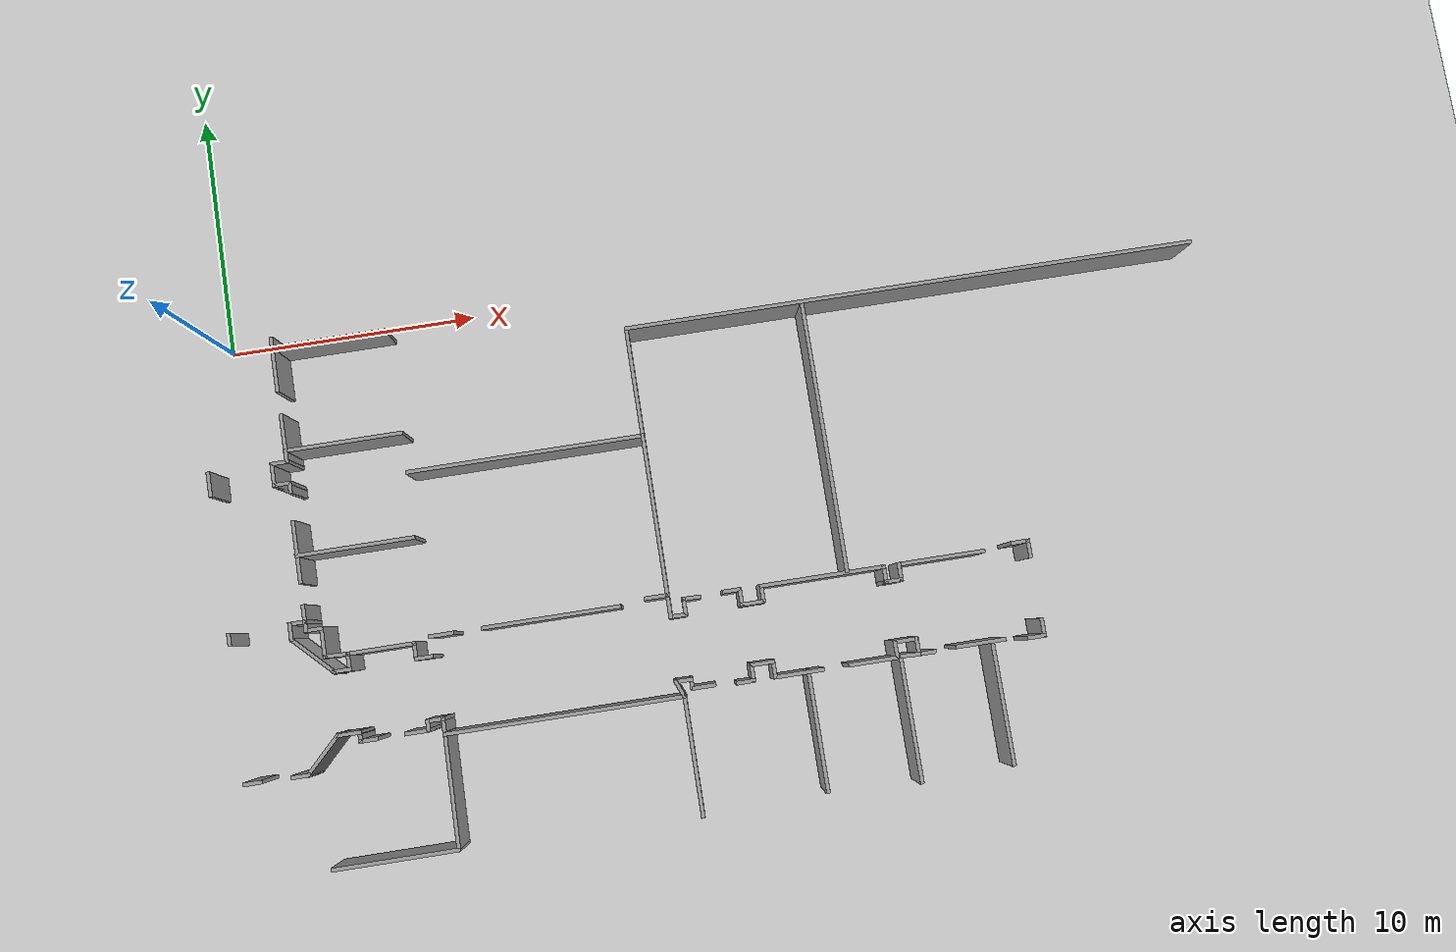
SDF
<sdf version="1.6">
 <world name="default">
  <model name="ground_plane">
   <static>1</static>
   <link name="link">
    <collision name="collision">
     <geometry><plane><normal>0 0 1</normal><size>200 100</size></plane></geometry>
     <surface><friction><ode><mu>100</mu><mu2>50</mu2></ode></friction></surface>
    </collision>
    <visual name="visual">
     <cast_shadows>0</cast_shadows>
     <geometry><plane><normal>0 0 1</normal><size>200 100</size></plane></geometry>
     <material>
      <script><uri>file://media/materials/scripts/gazebo.material</uri><name>Gazebo/Grey</name></script>
     </material>
    </visual>
   </link>
  </model>
  <model name="LuterFloorPlan">
   <pose>-8.27259 7.62647 0 0 -0 0</pose>
   <link name="Wall_762">
    <collision name="Wall_762_Collision">
     <geometry><box><size>2.25 0.15 2.5</size></box></geometry>
     <pose>0 0 1.25 0 -0 0</pose>
    </collision>
    <visual name="Wall_762_Visual">
     <pose>0 0 1.25 0 -0 0</pose>
     <geometry><box><size>2.25 0.15 2.5</size></box></geometry>
     <material>
      <script><uri>file://media/materials/scripts/gazebo.material</uri><name>Gazebo/Grey</name></script>
      <ambient>1 1 1 1</ambient>
     </material>
    </visual>
    <pose>10.4346 -8.83656 0 0 0 -1.5708</pose>
   </link>
   <link name="Wall_764">
    <collision name="Wall_764_Collision">
     <geometry><box><size>4.5 0.15 2.5</size></box></geometry>
     <pose>0 0 1.25 0 -0 0</pose>
    </collision>
    <visual name="Wall_764_Visual">
     <pose>0 0 1.25 0 -0 0</pose>
     <geometry><box><size>4.5 0.15 2.5</size></box></geometry>
     <material>
      <script><uri>file://media/materials/scripts/gazebo.material</uri><name>Gazebo/Grey</name></script>
      <ambient>1 1 1 1</ambient>
     </material>
    </visual>
    <pose>12.7194 -8.15585 0 0 -0 0</pose>
   </link>
   <link name="Wall_771">
    <collision name="Wall_771_Collision">
     <geometry><box><size>2 0.15 2.5</size></box></geometry>
     <pose>0 0 1.25 0 -0 0</pose>
    </collision>
    <visual name="Wall_771_Visual">
     <pose>0 0 1.25 0 -0 0</pose>
     <geometry><box><size>2 0.15 2.5</size></box></geometry>
     <material>
      <script><uri>file://media/materials/scripts/gazebo.material</uri><name>Gazebo/Grey</name></script>
      <ambient>1 1 1 1</ambient>
     </material>
    </visual>
    <pose>10.4461 -11.8458 0 0 0 -1.5708</pose>
   </link>
   <link name="Wall_772">
    <collision name="Wall_772_Collision">
     <geometry><box><size>0.75 0.15 2.5</size></box></geometry>
     <pose>0 0 1.25 0 -0 0</pose>
    </collision>
    <visual name="Wall_772_Visual">
     <pose>0 0 1.25 0 -0 0</pose>
     <geometry><box><size>0.75 0.15 2.5</size></box></geometry>
     <material>
      <script><uri>file://media/materials/scripts/gazebo.material</uri><name>Gazebo/Grey</name></script>
      <ambient>1 1 1 1</ambient>
     </material>
    </visual>
    <pose>10.1461 -12.7708 0 0 -0 3.14159</pose>
   </link>
   <link name="Wall_773">
    <collision name="Wall_773_Collision">
     <geometry><box><size>1 0.15 2.5</size></box></geometry>
     <pose>0 0 1.25 0 -0 0</pose>
    </collision>
    <visual name="Wall_773_Visual">
     <pose>0 0 1.25 0 -0 0</pose>
     <geometry><box><size>1 0.15 2.5</size></box></geometry>
     <material>
      <script><uri>file://media/materials/scripts/gazebo.material</uri><name>Gazebo/Grey</name></script>
      <ambient>1 1 1 1</ambient>
     </material>
    </visual>
    <pose>9.84605 -13.1958 0 0 0 -1.5708</pose>
   </link>
   <link name="Wall_774">
    <collision name="Wall_774_Collision">
     <geometry><box><size>0.75 0.15 2.5</size></box></geometry>
     <pose>0 0 1.25 0 -0 0</pose>
    </collision>
    <visual name="Wall_774_Visual">
     <pose>0 0 1.25 0 -0 0</pose>
     <geometry><box><size>0.75 0.15 2.5</size></box></geometry>
     <material>
      <script><uri>file://media/materials/scripts/gazebo.material</uri><name>Gazebo/Grey</name></script>
      <ambient>1 1 1 1</ambient>
     </material>
    </visual>
    <pose>10.1461 -13.6208 0 0 -0 0</pose>
   </link>
   <link name="Wall_775">
    <collision name="Wall_775_Collision">
     <geometry><box><size>0.5 0.15 2.5</size></box></geometry>
     <pose>0 0 1.25 0 -0 0</pose>
    </collision>
    <visual name="Wall_775_Visual">
     <pose>0 0 1.25 0 -0 0</pose>
     <geometry><box><size>0.5 0.15 2.5</size></box></geometry>
     <material>
      <script><uri>file://media/materials/scripts/gazebo.material</uri><name>Gazebo/Grey</name></script>
      <ambient>1 1 1 1</ambient>
     </material>
    </visual>
    <pose>10.4461 -13.7958 0 0 0 -1.5708</pose>
   </link>
   <link name="Wall_777">
    <collision name="Wall_777_Collision">
     <geometry><box><size>4.75 0.15 2.5</size></box></geometry>
     <pose>0 0 1.25 0 -0 0</pose>
    </collision>
    <visual name="Wall_777_Visual">
     <pose>0 0 1.25 0 -0 0</pose>
     <geometry><box><size>4.75 0.15 2.5</size></box></geometry>
     <material>
      <script><uri>file://media/materials/scripts/gazebo.material</uri><name>Gazebo/Grey</name></script>
      <ambient>1 1 1 1</ambient>
     </material>
    </visual>
    <pose>12.7262 -12.3328 0 0 -0 0</pose>
   </link>
   <link name="Wall_791">
    <collision name="Wall_791_Collision">
     <geometry><box><size>1 0.15 2.5</size></box></geometry>
     <pose>0 0 1.25 0 -0 0</pose>
    </collision>
    <visual name="Wall_791_Visual">
     <pose>0 0 1.25 0 -0 0</pose>
     <geometry><box><size>1 0.15 2.5</size></box></geometry>
     <material>
      <script><uri>file://media/materials/scripts/gazebo.material</uri><name>Gazebo/Grey</name></script>
      <ambient>1 1 1 1</ambient>
     </material>
    </visual>
    <pose>7.32264 -13.1916 0 0 -0 1.5708</pose>
   </link>
   <link name="Wall_809">
    <collision name="Wall_809_Collision">
     <geometry><box><size>0.5 0.15 2.5</size></box></geometry>
     <pose>0 0 1.25 0 -0 0</pose>
    </collision>
    <visual name="Wall_809_Visual">
     <pose>0 0 1.25 0 -0 0</pose>
     <geometry><box><size>0.5 0.15 2.5</size></box></geometry>
     <material>
      <script><uri>file://media/materials/scripts/gazebo.material</uri><name>Gazebo/Grey</name></script>
      <ambient>1 1 1 1</ambient>
     </material>
    </visual>
    <pose>7.3678 -19.3346 0 0 -0 1.5708</pose>
   </link>
   <link name="Wall_819">
    <collision name="Wall_819_Collision">
     <geometry><box><size>2.5 0.15 2.5</size></box></geometry>
     <pose>0 0 1.25 0 -0 0</pose>
    </collision>
    <visual name="Wall_819_Visual">
     <pose>0 0 1.25 0 -0 0</pose>
     <geometry><box><size>2.5 0.15 2.5</size></box></geometry>
     <material>
      <script><uri>file://media/materials/scripts/gazebo.material</uri><name>Gazebo/Grey</name></script>
      <ambient>1 1 1 1</ambient>
     </material>
    </visual>
    <pose>10.387 -16.3617 0 0 0 -1.5708</pose>
   </link>
   <link name="Wall_821">
    <collision name="Wall_821_Collision">
     <geometry><box><size>4.75 0.15 2.5</size></box></geometry>
     <pose>0 0 1.25 0 -0 0</pose>
    </collision>
    <visual name="Wall_821_Visual">
     <pose>0 0 1.25 0 -0 0</pose>
     <geometry><box><size>4.75 0.15 2.5</size></box></geometry>
     <material>
      <script><uri>file://media/materials/scripts/gazebo.material</uri><name>Gazebo/Grey</name></script>
      <ambient>1 1 1 1</ambient>
     </material>
    </visual>
    <pose>12.6607 -16.5017 0 0 -0 0</pose>
   </link>
   <link name="Wall_823">
    <collision name="Wall_823_Collision">
     <geometry><box><size>0.75 0.15 2.5</size></box></geometry>
     <pose>0 0 1.25 0 -0 0</pose>
    </collision>
    <visual name="Wall_823_Visual">
     <pose>0 0 1.25 0 -0 0</pose>
     <geometry><box><size>0.75 0.15 2.5</size></box></geometry>
     <material>
      <script><uri>file://media/materials/scripts/gazebo.material</uri><name>Gazebo/Grey</name></script>
      <ambient>1 1 1 1</ambient>
     </material>
    </visual>
    <pose>10.3617 -18.7996 0 0 0 -1.5708</pose>
   </link>
   <link name="Wall_824">
    <collision name="Wall_824_Collision">
     <geometry><box><size>0.75 0.15 2.5</size></box></geometry>
     <pose>0 0 1.25 0 -0 0</pose>
    </collision>
    <visual name="Wall_824_Visual">
     <pose>0 0 1.25 0 -0 0</pose>
     <geometry><box><size>0.75 0.15 2.5</size></box></geometry>
     <material>
      <script><uri>file://media/materials/scripts/gazebo.material</uri><name>Gazebo/Grey</name></script>
      <ambient>1 1 1 1</ambient>
     </material>
    </visual>
    <pose>10.0617 -19.0996 0 0 -0 3.14159</pose>
   </link>
   <link name="Wall_825">
    <collision name="Wall_825_Collision">
     <geometry><box><size>0.75 0.15 2.5</size></box></geometry>
     <pose>0 0 1.25 0 -0 0</pose>
    </collision>
    <visual name="Wall_825_Visual">
     <pose>0 0 1.25 0 -0 0</pose>
     <geometry><box><size>0.75 0.15 2.5</size></box></geometry>
     <material>
      <script><uri>file://media/materials/scripts/gazebo.material</uri><name>Gazebo/Grey</name></script>
      <ambient>1 1 1 1</ambient>
     </material>
    </visual>
    <pose>9.76166 -19.3996 0 0 0 -1.5708</pose>
   </link>
   <link name="Wall_826">
    <collision name="Wall_826_Collision">
     <geometry><box><size>2.25 0.15 2.5</size></box></geometry>
     <pose>0 0 1.25 0 -0 0</pose>
    </collision>
    <visual name="Wall_826_Visual">
     <pose>0 0 1.25 0 -0 0</pose>
     <geometry><box><size>2.25 0.15 2.5</size></box></geometry>
     <material>
      <script><uri>file://media/materials/scripts/gazebo.material</uri><name>Gazebo/Grey</name></script>
      <ambient>1 1 1 1</ambient>
     </material>
    </visual>
    <pose>10.5041 -20.4421 0 0 0 -0.785398</pose>
   </link>
   <link name="Wall_827">
    <collision name="Wall_827_Collision">
     <geometry><box><size>0.75 0.15 2.5</size></box></geometry>
     <pose>0 0 1.25 0 -0 0</pose>
    </collision>
    <visual name="Wall_827_Visual">
     <pose>0 0 1.25 0 -0 0</pose>
     <geometry><box><size>0.75 0.15 2.5</size></box></geometry>
     <material>
      <script><uri>file://media/materials/scripts/gazebo.material</uri><name>Gazebo/Grey</name></script>
      <ambient>1 1 1 1</ambient>
     </material>
    </visual>
    <pose>11.5466 -21.1846 0 0 -0 0</pose>
   </link>
   <link name="Wall_828">
    <collision name="Wall_828_Collision">
     <geometry><box><size>0.75 0.15 2.5</size></box></geometry>
     <pose>0 0 1.25 0 -0 0</pose>
    </collision>
    <visual name="Wall_828_Visual">
     <pose>0 0 1.25 0 -0 0</pose>
     <geometry><box><size>0.75 0.15 2.5</size></box></geometry>
     <material>
      <script><uri>file://media/materials/scripts/gazebo.material</uri><name>Gazebo/Grey</name></script>
      <ambient>1 1 1 1</ambient>
     </material>
    </visual>
    <pose>11.8466 -20.8846 0 0 -0 1.5708</pose>
   </link>
   <link name="Wall_829">
    <collision name="Wall_829_Collision">
     <geometry><box><size>2.75 0.15 2.5</size></box></geometry>
     <pose>0 0 1.25 0 -0 0</pose>
    </collision>
    <visual name="Wall_829_Visual">
     <pose>0 0 1.25 0 -0 0</pose>
     <geometry><box><size>2.75 0.15 2.5</size></box></geometry>
     <material>
      <script><uri>file://media/materials/scripts/gazebo.material</uri><name>Gazebo/Grey</name></script>
      <ambient>1 1 1 1</ambient>
     </material>
    </visual>
    <pose>13.1466 -20.5846 0 0 -0 0</pose>
   </link>
   <link name="Wall_830">
    <collision name="Wall_830_Collision">
     <geometry><box><size>0.75 0.15 2.5</size></box></geometry>
     <pose>0 0 1.25 0 -0 0</pose>
    </collision>
    <visual name="Wall_830_Visual">
     <pose>0 0 1.25 0 -0 0</pose>
     <geometry><box><size>0.75 0.15 2.5</size></box></geometry>
     <material>
      <script><uri>file://media/materials/scripts/gazebo.material</uri><name>Gazebo/Grey</name></script>
      <ambient>1 1 1 1</ambient>
     </material>
    </visual>
    <pose>14.4466 -20.8846 0 0 0 -1.5708</pose>
   </link>
   <link name="Wall_831">
    <collision name="Wall_831_Collision">
     <geometry><box><size>0.75 0.15 2.5</size></box></geometry>
     <pose>0 0 1.25 0 -0 0</pose>
    </collision>
    <visual name="Wall_831_Visual">
     <pose>0 0 1.25 0 -0 0</pose>
     <geometry><box><size>0.75 0.15 2.5</size></box></geometry>
     <material>
      <script><uri>file://media/materials/scripts/gazebo.material</uri><name>Gazebo/Grey</name></script>
      <ambient>1 1 1 1</ambient>
     </material>
    </visual>
    <pose>14.7466 -21.1846 0 0 -0 0</pose>
   </link>
   <link name="Wall_833">
    <collision name="Wall_833_Collision">
     <geometry><box><size>0.5 0.15 2.5</size></box></geometry>
     <pose>0 0 1.25 0 -0 0</pose>
    </collision>
    <visual name="Wall_833_Visual">
     <pose>0 0 1.25 0 -0 0</pose>
     <geometry><box><size>0.5 0.15 2.5</size></box></geometry>
     <material>
      <script><uri>file://media/materials/scripts/gazebo.material</uri><name>Gazebo/Grey</name></script>
      <ambient>1 1 1 1</ambient>
     </material>
    </visual>
    <pose>10.3617 -19.2746 0 0 0 -1.5708</pose>
   </link>
   <link name="Wall_834">
    <collision name="Wall_834_Collision">
     <geometry><box><size>0.75 0.15 2.5</size></box></geometry>
     <pose>0 0 1.25 0 -0 0</pose>
    </collision>
    <visual name="Wall_834_Visual">
     <pose>0 0 1.25 0 -0 0</pose>
     <geometry><box><size>0.75 0.15 2.5</size></box></geometry>
     <material>
      <script><uri>file://media/materials/scripts/gazebo.material</uri><name>Gazebo/Grey</name></script>
      <ambient>1 1 1 1</ambient>
     </material>
    </visual>
    <pose>10.6617 -19.4496 0 0 -0 0</pose>
   </link>
   <link name="Wall_835">
    <collision name="Wall_835_Collision">
     <geometry><box><size>1.25 0.15 2.5</size></box></geometry>
     <pose>0 0 1.25 0 -0 0</pose>
    </collision>
    <visual name="Wall_835_Visual">
     <pose>0 0 1.25 0 -0 0</pose>
     <geometry><box><size>1.25 0.15 2.5</size></box></geometry>
     <material>
      <script><uri>file://media/materials/scripts/gazebo.material</uri><name>Gazebo/Grey</name></script>
      <ambient>1 1 1 1</ambient>
     </material>
    </visual>
    <pose>10.9617 -19.9996 0 0 0 -1.5708</pose>
   </link>
   <link name="Wall_836">
    <collision name="Wall_836_Collision">
     <geometry><box><size>1.03561 0.15 2.5</size></box></geometry>
     <pose>0 0 1.25 0 -0 0</pose>
    </collision>
    <visual name="Wall_836_Visual">
     <pose>0 0 1.25 0 -0 0</pose>
     <geometry><box><size>1.03561 0.15 2.5</size></box></geometry>
     <material>
      <script><uri>file://media/materials/scripts/gazebo.material</uri><name>Gazebo/Grey</name></script>
      <ambient>1 1 1 1</ambient>
     </material>
    </visual>
    <pose>11.4041 -20.5671 0 0 0 -0.039445</pose>
   </link>
   <link name="Wall_852">
    <collision name="Wall_852_Collision">
     <geometry><box><size>0.75 0.15 2.5</size></box></geometry>
     <pose>0 0 1.25 0 -0 0</pose>
    </collision>
    <visual name="Wall_852_Visual">
     <pose>0 0 1.25 0 -0 0</pose>
     <geometry><box><size>0.75 0.15 2.5</size></box></geometry>
     <material>
      <script><uri>file://media/materials/scripts/gazebo.material</uri><name>Gazebo/Grey</name></script>
      <ambient>1 1 1 1</ambient>
     </material>
    </visual>
    <pose>7.59685 -24.914 0 0 -0 0</pose>
   </link>
   <link name="Wall_858">
    <collision name="Wall_858_Collision">
     <geometry><box><size>5 0.15 2.5</size></box></geometry>
     <pose>0 0 1.25 0 -0 0</pose>
    </collision>
    <visual name="Wall_858_Visual">
     <pose>0 0 1.25 0 -0 0</pose>
     <geometry><box><size>5 0.15 2.5</size></box></geometry>
     <material>
      <script><uri>file://media/materials/scripts/gazebo.material</uri><name>Gazebo/Grey</name></script>
      <ambient>1 1 1 1</ambient>
     </material>
    </visual>
    <pose>12.6662 -28.6096 0 0 -0 0</pose>
   </link>
   <link name="Wall_859">
    <collision name="Wall_859_Collision">
     <geometry><box><size>4.56757 0.15 2.5</size></box></geometry>
     <pose>0 0 1.25 0 -0 0</pose>
    </collision>
    <visual name="Wall_859_Visual">
     <pose>0 0 1.25 0 -0 0</pose>
     <geometry><box><size>4.56757 0.15 2.5</size></box></geometry>
     <material>
      <script><uri>file://media/materials/scripts/gazebo.material</uri><name>Gazebo/Grey</name></script>
      <ambient>1 1 1 1</ambient>
     </material>
    </visual>
    <pose>15.1255 -26.4011 0 0 -0 1.55526</pose>
   </link>
   <link name="Wall_860">
    <collision name="Wall_860_Collision">
     <geometry><box><size>9.5 0.15 2.5</size></box></geometry>
     <pose>0 0 1.25 0 -0 0</pose>
    </collision>
    <visual name="Wall_860_Visual">
     <pose>0 0 1.25 0 -0 0</pose>
     <geometry><box><size>9.5 0.15 2.5</size></box></geometry>
     <material>
      <script><uri>file://media/materials/scripts/gazebo.material</uri><name>Gazebo/Grey</name></script>
      <ambient>1 1 1 1</ambient>
     </material>
    </visual>
    <pose>19.8348 -24.2154 0 0 -0 0</pose>
   </link>
   <link name="Wall_862">
    <collision name="Wall_862_Collision">
     <geometry><box><size>0.75 0.15 2.5</size></box></geometry>
     <pose>0 0 1.25 0 -0 0</pose>
    </collision>
    <visual name="Wall_862_Visual">
     <pose>0 0 1.25 0 -0 0</pose>
     <geometry><box><size>0.75 0.15 2.5</size></box></geometry>
     <material>
      <script><uri>file://media/materials/scripts/gazebo.material</uri><name>Gazebo/Grey</name></script>
      <ambient>1 1 1 1</ambient>
     </material>
    </visual>
    <pose>9.45847 -24.9377 0 0 -0 0</pose>
   </link>
   <link name="Wall_863">
    <collision name="Wall_863_Collision">
     <geometry><box><size>2 0.15 2.5</size></box></geometry>
     <pose>0 0 1.25 0 -0 0</pose>
    </collision>
    <visual name="Wall_863_Visual">
     <pose>0 0 1.25 0 -0 0</pose>
     <geometry><box><size>2 0.15 2.5</size></box></geometry>
     <material>
      <script><uri>file://media/materials/scripts/gazebo.material</uri><name>Gazebo/Grey</name></script>
      <ambient>1 1 1 1</ambient>
     </material>
    </visual>
    <pose>10.4125 -24.2836 0 0 -0 0.785398</pose>
   </link>
   <link name="Wall_864">
    <collision name="Wall_864_Collision">
     <geometry><box><size>1 0.15 2.5</size></box></geometry>
     <pose>0 0 1.25 0 -0 0</pose>
    </collision>
    <visual name="Wall_864_Visual">
     <pose>0 0 1.25 0 -0 0</pose>
     <geometry><box><size>1 0.15 2.5</size></box></geometry>
     <material>
      <script><uri>file://media/materials/scripts/gazebo.material</uri><name>Gazebo/Grey</name></script>
      <ambient>1 1 1 1</ambient>
     </material>
    </visual>
    <pose>11.4916 -23.6296 0 0 -0 0</pose>
   </link>
   <link name="Wall_865">
    <collision name="Wall_865_Collision">
     <geometry><box><size>0.5 0.15 2.5</size></box></geometry>
     <pose>0 0 1.25 0 -0 0</pose>
    </collision>
    <visual name="Wall_865_Visual">
     <pose>0 0 1.25 0 -0 0</pose>
     <geometry><box><size>0.5 0.15 2.5</size></box></geometry>
     <material>
      <script><uri>file://media/materials/scripts/gazebo.material</uri><name>Gazebo/Grey</name></script>
      <ambient>1 1 1 1</ambient>
     </material>
    </visual>
    <pose>11.9166 -23.8046 0 0 0 -1.5708</pose>
   </link>
   <link name="Wall_866">
    <collision name="Wall_866_Collision">
     <geometry><box><size>0.75 0.15 2.5</size></box></geometry>
     <pose>0 0 1.25 0 -0 0</pose>
    </collision>
    <visual name="Wall_866_Visual">
     <pose>0 0 1.25 0 -0 0</pose>
     <geometry><box><size>0.75 0.15 2.5</size></box></geometry>
     <material>
      <script><uri>file://media/materials/scripts/gazebo.material</uri><name>Gazebo/Grey</name></script>
      <ambient>1 1 1 1</ambient>
     </material>
    </visual>
    <pose>12.2166 -23.9796 0 0 -0 0</pose>
   </link>
   <link name="Wall_870">
    <collision name="Wall_870_Collision">
     <geometry><box><size>0.75 0.15 2.5</size></box></geometry>
     <pose>0 0 1.25 0 -0 0</pose>
    </collision>
    <visual name="Wall_870_Visual">
     <pose>0 0 1.25 0 -0 0</pose>
     <geometry><box><size>0.75 0.15 2.5</size></box></geometry>
     <material>
      <script><uri>file://media/materials/scripts/gazebo.material</uri><name>Gazebo/Grey</name></script>
      <ambient>1 1 1 1</ambient>
     </material>
    </visual>
    <pose>15.1598 -23.9154 0 0 -0 1.5708</pose>
   </link>
   <link name="Wall_871">
    <collision name="Wall_871_Collision">
     <geometry><box><size>0.75 0.15 2.5</size></box></geometry>
     <pose>0 0 1.25 0 -0 0</pose>
    </collision>
    <visual name="Wall_871_Visual">
     <pose>0 0 1.25 0 -0 0</pose>
     <geometry><box><size>0.75 0.15 2.5</size></box></geometry>
     <material>
      <script><uri>file://media/materials/scripts/gazebo.material</uri><name>Gazebo/Grey</name></script>
      <ambient>1 1 1 1</ambient>
     </material>
    </visual>
    <pose>14.8598 -23.6154 0 0 -0 3.14159</pose>
   </link>
   <link name="Wall_872">
    <collision name="Wall_872_Collision">
     <geometry><box><size>0.5 0.15 2.5</size></box></geometry>
     <pose>0 0 1.25 0 -0 0</pose>
    </collision>
    <visual name="Wall_872_Visual">
     <pose>0 0 1.25 0 -0 0</pose>
     <geometry><box><size>0.5 0.15 2.5</size></box></geometry>
     <material>
      <script><uri>file://media/materials/scripts/gazebo.material</uri><name>Gazebo/Grey</name></script>
      <ambient>1 1 1 1</ambient>
     </material>
    </visual>
    <pose>14.5598 -23.7904 0 0 0 -1.5708</pose>
   </link>
   <link name="Wall_873">
    <collision name="Wall_873_Collision">
     <geometry><box><size>1 0.15 2.5</size></box></geometry>
     <pose>0 0 1.25 0 -0 0</pose>
    </collision>
    <visual name="Wall_873_Visual">
     <pose>0 0 1.25 0 -0 0</pose>
     <geometry><box><size>1 0.15 2.5</size></box></geometry>
     <material>
      <script><uri>file://media/materials/scripts/gazebo.material</uri><name>Gazebo/Grey</name></script>
      <ambient>1 1 1 1</ambient>
     </material>
    </visual>
    <pose>14.1348 -23.9654 0 0 -0 3.14159</pose>
   </link>
   <link name="Wall_875">
    <collision name="Wall_875_Collision">
     <geometry><box><size>9.5 0.15 2.5</size></box></geometry>
     <pose>0 0 1.25 0 -0 0</pose>
    </collision>
    <visual name="Wall_875_Visual">
     <pose>0 0 1.25 0 -0 0</pose>
     <geometry><box><size>9.5 0.15 2.5</size></box></geometry>
     <material>
      <script><uri>file://media/materials/scripts/gazebo.material</uri><name>Gazebo/Grey</name></script>
      <ambient>1 1 1 1</ambient>
     </material>
    </visual>
    <pose>19.7757 -13.9153 0 0 -0 0</pose>
   </link>
   <link name="Wall_876">
    <collision name="Wall_876_Collision">
     <geometry><box><size>4.5 0.15 2.5</size></box></geometry>
     <pose>0 0 1.25 0 -0 0</pose>
    </collision>
    <visual name="Wall_876_Visual">
     <pose>0 0 1.25 0 -0 0</pose>
     <geometry><box><size>4.5 0.15 2.5</size></box></geometry>
     <material>
      <script><uri>file://media/materials/scripts/gazebo.material</uri><name>Gazebo/Grey</name></script>
      <ambient>1 1 1 1</ambient>
     </material>
    </visual>
    <pose>24.4507 -11.7403 0 0 -0 1.5708</pose>
   </link>
   <link name="Wall_878">
    <collision name="Wall_878_Collision">
     <geometry><box><size>23 0.15 2.5</size></box></geometry>
     <pose>0 0 1.25 0 -0 0</pose>
    </collision>
    <visual name="Wall_878_Visual">
     <pose>0 0 1.25 0 -0 0</pose>
     <geometry><box><size>23 0.15 2.5</size></box></geometry>
     <material>
      <script><uri>file://media/materials/scripts/gazebo.material</uri><name>Gazebo/Grey</name></script>
      <ambient>1 1 1 1</ambient>
     </material>
    </visual>
    <pose>35.8757 -9.56528 0 0 -0 0</pose>
   </link>
   <link name="Wall_880">
    <collision name="Wall_880_Collision">
     <geometry><box><size>1 0.15 2.5</size></box></geometry>
     <pose>0 0 1.25 0 -0 0</pose>
    </collision>
    <visual name="Wall_880_Visual">
     <pose>0 0 1.25 0 -0 0</pose>
     <geometry><box><size>1 0.15 2.5</size></box></geometry>
     <material>
      <script><uri>file://media/materials/scripts/gazebo.material</uri><name>Gazebo/Grey</name></script>
      <ambient>1 1 1 1</ambient>
     </material>
    </visual>
    <pose>15.537 -20.4184 0 0 -0 0</pose>
   </link>
   <link name="Wall_882">
    <collision name="Wall_882_Collision">
     <geometry><box><size>5.5 0.15 2.5</size></box></geometry>
     <pose>0 0 1.25 0 -0 0</pose>
    </collision>
    <visual name="Wall_882_Visual">
     <pose>0 0 1.25 0 -0 0</pose>
     <geometry><box><size>5.5 0.15 2.5</size></box></geometry>
     <material>
      <script><uri>file://media/materials/scripts/gazebo.material</uri><name>Gazebo/Grey</name></script>
      <ambient>1 1 1 1</ambient>
     </material>
    </visual>
    <pose>19.8538 -20.409 0 0 -0 0</pose>
   </link>
   <link name="Wall_884">
    <collision name="Wall_884_Collision">
     <geometry><box><size>6.5 0.15 2.5</size></box></geometry>
     <pose>0 0 1.25 0 -0 0</pose>
    </collision>
    <visual name="Wall_884_Visual">
     <pose>0 0 1.25 0 -0 0</pose>
     <geometry><box><size>6.5 0.15 2.5</size></box></geometry>
     <material>
      <script><uri>file://media/materials/scripts/gazebo.material</uri><name>Gazebo/Grey</name></script>
      <ambient>1 1 1 1</ambient>
     </material>
    </visual>
    <pose>24.4507 -17.0903 0 0 0 -1.5708</pose>
   </link>
   <link name="Wall_885">
    <collision name="Wall_885_Collision">
     <geometry><box><size>1 0.15 2.5</size></box></geometry>
     <pose>0 0 1.25 0 -0 0</pose>
    </collision>
    <visual name="Wall_885_Visual">
     <pose>0 0 1.25 0 -0 0</pose>
     <geometry><box><size>1 0.15 2.5</size></box></geometry>
     <material>
      <script><uri>file://media/materials/scripts/gazebo.material</uri><name>Gazebo/Grey</name></script>
      <ambient>1 1 1 1</ambient>
     </material>
    </visual>
    <pose>24.0257 -20.2653 0 0 -0 3.14159</pose>
   </link>
   <link name="Wall_887">
    <collision name="Wall_887_Collision">
     <geometry><box><size>1 0.15 2.5</size></box></geometry>
     <pose>0 0 1.25 0 -0 0</pose>
    </collision>
    <visual name="Wall_887_Visual">
     <pose>0 0 1.25 0 -0 0</pose>
     <geometry><box><size>1 0.15 2.5</size></box></geometry>
     <material>
      <script><uri>file://media/materials/scripts/gazebo.material</uri><name>Gazebo/Grey</name></script>
      <ambient>1 1 1 1</ambient>
     </material>
    </visual>
    <pose>24.4507 -20.6903 0 0 0 -1.5708</pose>
   </link>
   <link name="Wall_888">
    <collision name="Wall_888_Collision">
     <geometry><box><size>0.75 0.15 2.5</size></box></geometry>
     <pose>0 0 1.25 0 -0 0</pose>
    </collision>
    <visual name="Wall_888_Visual">
     <pose>0 0 1.25 0 -0 0</pose>
     <geometry><box><size>0.75 0.15 2.5</size></box></geometry>
     <material>
      <script><uri>file://media/materials/scripts/gazebo.material</uri><name>Gazebo/Grey</name></script>
      <ambient>1 1 1 1</ambient>
     </material>
    </visual>
    <pose>24.7507 -21.1153 0 0 -0 0</pose>
   </link>
   <link name="Wall_889">
    <collision name="Wall_889_Collision">
     <geometry><box><size>0.75 0.15 2.5</size></box></geometry>
     <pose>0 0 1.25 0 -0 0</pose>
    </collision>
    <visual name="Wall_889_Visual">
     <pose>0 0 1.25 0 -0 0</pose>
     <geometry><box><size>0.75 0.15 2.5</size></box></geometry>
     <material>
      <script><uri>file://media/materials/scripts/gazebo.material</uri><name>Gazebo/Grey</name></script>
      <ambient>1 1 1 1</ambient>
     </material>
    </visual>
    <pose>25.0507 -20.8153 0 0 -0 1.5708</pose>
   </link>
   <link name="Wall_890">
    <collision name="Wall_890_Collision">
     <geometry><box><size>0.75 0.15 2.5</size></box></geometry>
     <pose>0 0 1.25 0 -0 0</pose>
    </collision>
    <visual name="Wall_890_Visual">
     <pose>0 0 1.25 0 -0 0</pose>
     <geometry><box><size>0.75 0.15 2.5</size></box></geometry>
     <material>
      <script><uri>file://media/materials/scripts/gazebo.material</uri><name>Gazebo/Grey</name></script>
      <ambient>1 1 1 1</ambient>
     </material>
    </visual>
    <pose>25.3507 -20.5153 0 0 -0 0</pose>
   </link>
   <link name="Wall_892">
    <collision name="Wall_892_Collision">
     <geometry><box><size>0.8 0.15 2.5</size></box></geometry>
     <pose>0 0 1.25 0 -0 0</pose>
    </collision>
    <visual name="Wall_892_Visual">
     <pose>0 0 1.25 0 -0 0</pose>
     <geometry><box><size>0.8 0.15 2.5</size></box></geometry>
     <material>
      <script><uri>file://media/materials/scripts/gazebo.material</uri><name>Gazebo/Grey</name></script>
      <ambient>1 1 1 1</ambient>
     </material>
    </visual>
    <pose>24.3848 -23.9154 0 0 -0 1.96559</pose>
   </link>
   <link name="Wall_893">
    <collision name="Wall_893_Collision">
     <geometry><box><size>0.75 0.15 2.5</size></box></geometry>
     <pose>0 0 1.25 0 -0 0</pose>
    </collision>
    <visual name="Wall_893_Visual">
     <pose>0 0 1.25 0 -0 0</pose>
     <geometry><box><size>0.75 0.15 2.5</size></box></geometry>
     <material>
      <script><uri>file://media/materials/scripts/gazebo.material</uri><name>Gazebo/Grey</name></script>
      <ambient>1 1 1 1</ambient>
     </material>
    </visual>
    <pose>24.5598 -23.6154 0 0 -0 0</pose>
   </link>
   <link name="Wall_894">
    <collision name="Wall_894_Collision">
     <geometry><box><size>0.5 0.15 2.5</size></box></geometry>
     <pose>0 0 1.25 0 -0 0</pose>
    </collision>
    <visual name="Wall_894_Visual">
     <pose>0 0 1.25 0 -0 0</pose>
     <geometry><box><size>0.5 0.15 2.5</size></box></geometry>
     <material>
      <script><uri>file://media/materials/scripts/gazebo.material</uri><name>Gazebo/Grey</name></script>
      <ambient>1 1 1 1</ambient>
     </material>
    </visual>
    <pose>24.8598 -23.7904 0 0 0 -1.5708</pose>
   </link>
   <link name="Wall_895">
    <collision name="Wall_895_Collision">
     <geometry><box><size>1 0.15 2.5</size></box></geometry>
     <pose>0 0 1.25 0 -0 0</pose>
    </collision>
    <visual name="Wall_895_Visual">
     <pose>0 0 1.25 0 -0 0</pose>
     <geometry><box><size>1 0.15 2.5</size></box></geometry>
     <material>
      <script><uri>file://media/materials/scripts/gazebo.material</uri><name>Gazebo/Grey</name></script>
      <ambient>1 1 1 1</ambient>
     </material>
    </visual>
    <pose>25.2848 -23.9654 0 0 -0 0</pose>
   </link>
   <link name="Wall_898">
    <collision name="Wall_898_Collision">
     <geometry><box><size>4.75 0.15 2.5</size></box></geometry>
     <pose>0 0 1.25 0 -0 0</pose>
    </collision>
    <visual name="Wall_898_Visual">
     <pose>0 0 1.25 0 -0 0</pose>
     <geometry><box><size>4.75 0.15 2.5</size></box></geometry>
     <material>
      <script><uri>file://media/materials/scripts/gazebo.material</uri><name>Gazebo/Grey</name></script>
      <ambient>1 1 1 1</ambient>
     </material>
    </visual>
    <pose>24.5098 -26.5154 0 0 0 -1.5708</pose>
   </link>
   <link name="Wall_901">
    <collision name="Wall_901_Collision">
     <geometry><box><size>0.75 0.15 2.5</size></box></geometry>
     <pose>0 0 1.25 0 -0 0</pose>
    </collision>
    <visual name="Wall_901_Visual">
     <pose>0 0 1.25 0 -0 0</pose>
     <geometry><box><size>0.75 0.15 2.5</size></box></geometry>
     <material>
      <script><uri>file://media/materials/scripts/gazebo.material</uri><name>Gazebo/Grey</name></script>
      <ambient>1 1 1 1</ambient>
     </material>
    </visual>
    <pose>26.9522 -24.0356 0 0 -0 0</pose>
   </link>
   <link name="Wall_902">
    <collision name="Wall_902_Collision">
     <geometry><box><size>0.75 0.15 2.5</size></box></geometry>
     <pose>0 0 1.25 0 -0 0</pose>
    </collision>
    <visual name="Wall_902_Visual">
     <pose>0 0 1.25 0 -0 0</pose>
     <geometry><box><size>0.75 0.15 2.5</size></box></geometry>
     <material>
      <script><uri>file://media/materials/scripts/gazebo.material</uri><name>Gazebo/Grey</name></script>
      <ambient>1 1 1 1</ambient>
     </material>
    </visual>
    <pose>27.2522 -23.7356 0 0 -0 1.5708</pose>
   </link>
   <link name="Wall_903">
    <collision name="Wall_903_Collision">
     <geometry><box><size>1 0.15 2.5</size></box></geometry>
     <pose>0 0 1.25 0 -0 0</pose>
    </collision>
    <visual name="Wall_903_Visual">
     <pose>0 0 1.25 0 -0 0</pose>
     <geometry><box><size>1 0.15 2.5</size></box></geometry>
     <material>
      <script><uri>file://media/materials/scripts/gazebo.material</uri><name>Gazebo/Grey</name></script>
      <ambient>1 1 1 1</ambient>
     </material>
    </visual>
    <pose>27.6772 -23.4356 0 0 -0 0</pose>
   </link>
   <link name="Wall_904">
    <collision name="Wall_904_Collision">
     <geometry><box><size>0.75 0.15 2.5</size></box></geometry>
     <pose>0 0 1.25 0 -0 0</pose>
    </collision>
    <visual name="Wall_904_Visual">
     <pose>0 0 1.25 0 -0 0</pose>
     <geometry><box><size>0.75 0.15 2.5</size></box></geometry>
     <material>
      <script><uri>file://media/materials/scripts/gazebo.material</uri><name>Gazebo/Grey</name></script>
      <ambient>1 1 1 1</ambient>
     </material>
    </visual>
    <pose>28.1022 -23.7356 0 0 0 -1.5708</pose>
   </link>
   <link name="Wall_905">
    <collision name="Wall_905_Collision">
     <geometry><box><size>2 0.15 2.5</size></box></geometry>
     <pose>0 0 1.25 0 -0 0</pose>
    </collision>
    <visual name="Wall_905_Visual">
     <pose>0 0 1.25 0 -0 0</pose>
     <geometry><box><size>2 0.15 2.5</size></box></geometry>
     <material>
      <script><uri>file://media/materials/scripts/gazebo.material</uri><name>Gazebo/Grey</name></script>
      <ambient>1 1 1 1</ambient>
     </material>
    </visual>
    <pose>29.0272 -24.0356 0 0 -0 0</pose>
   </link>
   <link name="Wall_907">
    <collision name="Wall_907_Collision">
     <geometry><box><size>4.75 0.15 2.5</size></box></geometry>
     <pose>0 0 1.25 0 -0 0</pose>
    </collision>
    <visual name="Wall_907_Visual">
     <pose>0 0 1.25 0 -0 0</pose>
     <geometry><box><size>4.75 0.15 2.5</size></box></geometry>
     <material>
      <script><uri>file://media/materials/scripts/gazebo.material</uri><name>Gazebo/Grey</name></script>
      <ambient>1 1 1 1</ambient>
     </material>
    </visual>
    <pose>29.4 -26.3356 0 0 0 -1.5708</pose>
   </link>
   <link name="Wall_909">
    <collision name="Wall_909_Collision">
     <geometry><box><size>11 0.15 2.5</size></box></geometry>
     <pose>0 0 1.25 0 -0 0</pose>
    </collision>
    <visual name="Wall_909_Visual">
     <pose>0 0 1.25 0 -0 0</pose>
     <geometry><box><size>11 0.15 2.5</size></box></geometry>
     <material>
      <script><uri>file://media/materials/scripts/gazebo.material</uri><name>Gazebo/Grey</name></script>
      <ambient>1 1 1 1</ambient>
     </material>
    </visual>
    <pose>31.5268 -14.9897 0 0 0 -1.5708</pose>
   </link>
   <link name="Wall_911">
    <collision name="Wall_911_Collision">
     <geometry><box><size>0.75 0.15 2.5</size></box></geometry>
     <pose>0 0 1.25 0 -0 0</pose>
    </collision>
    <visual name="Wall_911_Visual">
     <pose>0 0 1.25 0 -0 0</pose>
     <geometry><box><size>0.75 0.15 2.5</size></box></geometry>
     <material>
      <script><uri>file://media/materials/scripts/gazebo.material</uri><name>Gazebo/Grey</name></script>
      <ambient>1 1 1 1</ambient>
     </material>
    </visual>
    <pose>26.9689 -20.4783 0 0 -0 0</pose>
   </link>
   <link name="Wall_912">
    <collision name="Wall_912_Collision">
     <geometry><box><size>0.75 0.15 2.5</size></box></geometry>
     <pose>0 0 1.25 0 -0 0</pose>
    </collision>
    <visual name="Wall_912_Visual">
     <pose>0 0 1.25 0 -0 0</pose>
     <geometry><box><size>0.75 0.15 2.5</size></box></geometry>
     <material>
      <script><uri>file://media/materials/scripts/gazebo.material</uri><name>Gazebo/Grey</name></script>
      <ambient>1 1 1 1</ambient>
     </material>
    </visual>
    <pose>27.2689 -20.7783 0 0 0 -1.5708</pose>
   </link>
   <link name="Wall_913">
    <collision name="Wall_913_Collision">
     <geometry><box><size>1 0.15 2.5</size></box></geometry>
     <pose>0 0 1.25 0 -0 0</pose>
    </collision>
    <visual name="Wall_913_Visual">
     <pose>0 0 1.25 0 -0 0</pose>
     <geometry><box><size>1 0.15 2.5</size></box></geometry>
     <material>
      <script><uri>file://media/materials/scripts/gazebo.material</uri><name>Gazebo/Grey</name></script>
      <ambient>1 1 1 1</ambient>
     </material>
    </visual>
    <pose>27.6939 -21.0783 0 0 -0 0</pose>
   </link>
   <link name="Wall_914">
    <collision name="Wall_914_Collision">
     <geometry><box><size>0.75 0.15 2.5</size></box></geometry>
     <pose>0 0 1.25 0 -0 0</pose>
    </collision>
    <visual name="Wall_914_Visual">
     <pose>0 0 1.25 0 -0 0</pose>
     <geometry><box><size>0.75 0.15 2.5</size></box></geometry>
     <material>
      <script><uri>file://media/materials/scripts/gazebo.material</uri><name>Gazebo/Grey</name></script>
      <ambient>1 1 1 1</ambient>
     </material>
    </visual>
    <pose>28.1189 -20.7783 0 0 -0 1.5708</pose>
   </link>
   <link name="Wall_915">
    <collision name="Wall_915_Collision">
     <geometry><box><size>5 0.15 2.5</size></box></geometry>
     <pose>0 0 1.25 0 -0 0</pose>
    </collision>
    <visual name="Wall_915_Visual">
     <pose>0 0 1.25 0 -0 0</pose>
     <geometry><box><size>5 0.15 2.5</size></box></geometry>
     <material>
      <script><uri>file://media/materials/scripts/gazebo.material</uri><name>Gazebo/Grey</name></script>
      <ambient>1 1 1 1</ambient>
     </material>
    </visual>
    <pose>30.5439 -20.4783 0 0 -0 0</pose>
   </link>
   <link name="Wall_916">
    <collision name="Wall_916_Collision">
     <geometry><box><size>0.75 0.15 2.5</size></box></geometry>
     <pose>0 0 1.25 0 -0 0</pose>
    </collision>
    <visual name="Wall_916_Visual">
     <pose>0 0 1.25 0 -0 0</pose>
     <geometry><box><size>0.75 0.15 2.5</size></box></geometry>
     <material>
      <script><uri>file://media/materials/scripts/gazebo.material</uri><name>Gazebo/Grey</name></script>
      <ambient>1 1 1 1</ambient>
     </material>
    </visual>
    <pose>32.9689 -20.7783 0 0 0 -1.5708</pose>
   </link>
   <link name="Wall_917">
    <collision name="Wall_917_Collision">
     <geometry><box><size>0.75 0.15 2.5</size></box></geometry>
     <pose>0 0 1.25 0 -0 0</pose>
    </collision>
    <visual name="Wall_917_Visual">
     <pose>0 0 1.25 0 -0 0</pose>
     <geometry><box><size>0.75 0.15 2.5</size></box></geometry>
     <material>
      <script><uri>file://media/materials/scripts/gazebo.material</uri><name>Gazebo/Grey</name></script>
      <ambient>1 1 1 1</ambient>
     </material>
    </visual>
    <pose>33.2689 -21.0783 0 0 -0 0</pose>
   </link>
   <link name="Wall_918">
    <collision name="Wall_918_Collision">
     <geometry><box><size>0.75 0.15 2.5</size></box></geometry>
     <pose>0 0 1.25 0 -0 0</pose>
    </collision>
    <visual name="Wall_918_Visual">
     <pose>0 0 1.25 0 -0 0</pose>
     <geometry><box><size>0.75 0.15 2.5</size></box></geometry>
     <material>
      <script><uri>file://media/materials/scripts/gazebo.material</uri><name>Gazebo/Grey</name></script>
      <ambient>1 1 1 1</ambient>
     </material>
    </visual>
    <pose>33.5689 -20.7783 0 0 -0 1.5708</pose>
   </link>
   <link name="Wall_919">
    <collision name="Wall_919_Collision">
     <geometry><box><size>3.5 0.15 2.5</size></box></geometry>
     <pose>0 0 1.25 0 -0 0</pose>
    </collision>
    <visual name="Wall_919_Visual">
     <pose>0 0 1.25 0 -0 0</pose>
     <geometry><box><size>3.5 0.15 2.5</size></box></geometry>
     <material>
      <script><uri>file://media/materials/scripts/gazebo.material</uri><name>Gazebo/Grey</name></script>
      <ambient>1 1 1 1</ambient>
     </material>
    </visual>
    <pose>35.2439 -20.4783 0 0 -0 0</pose>
   </link>
   <link name="Wall_921">
    <collision name="Wall_921_Collision">
     <geometry><box><size>2 0.15 2.5</size></box></geometry>
     <pose>0 0 1.25 0 -0 0</pose>
    </collision>
    <visual name="Wall_921_Visual">
     <pose>0 0 1.25 0 -0 0</pose>
     <geometry><box><size>2 0.15 2.5</size></box></geometry>
     <material>
      <script><uri>file://media/materials/scripts/gazebo.material</uri><name>Gazebo/Grey</name></script>
      <ambient>1 1 1 1</ambient>
     </material>
    </visual>
    <pose>31.9736 -24.0261 0 0 -0 0</pose>
   </link>
   <link name="Wall_922">
    <collision name="Wall_922_Collision">
     <geometry><box><size>0.75 0.15 2.5</size></box></geometry>
     <pose>0 0 1.25 0 -0 0</pose>
    </collision>
    <visual name="Wall_922_Visual">
     <pose>0 0 1.25 0 -0 0</pose>
     <geometry><box><size>0.75 0.15 2.5</size></box></geometry>
     <material>
      <script><uri>file://media/materials/scripts/gazebo.material</uri><name>Gazebo/Grey</name></script>
      <ambient>1 1 1 1</ambient>
     </material>
    </visual>
    <pose>32.8986 -23.7261 0 0 -0 1.5708</pose>
   </link>
   <link name="Wall_923">
    <collision name="Wall_923_Collision">
     <geometry><box><size>1 0.15 2.5</size></box></geometry>
     <pose>0 0 1.25 0 -0 0</pose>
    </collision>
    <visual name="Wall_923_Visual">
     <pose>0 0 1.25 0 -0 0</pose>
     <geometry><box><size>1 0.15 2.5</size></box></geometry>
     <material>
      <script><uri>file://media/materials/scripts/gazebo.material</uri><name>Gazebo/Grey</name></script>
      <ambient>1 1 1 1</ambient>
     </material>
    </visual>
    <pose>33.3236 -23.4261 0 0 -0 0</pose>
   </link>
   <link name="Wall_924">
    <collision name="Wall_924_Collision">
     <geometry><box><size>0.75 0.15 2.5</size></box></geometry>
     <pose>0 0 1.25 0 -0 0</pose>
    </collision>
    <visual name="Wall_924_Visual">
     <pose>0 0 1.25 0 -0 0</pose>
     <geometry><box><size>0.75 0.15 2.5</size></box></geometry>
     <material>
      <script><uri>file://media/materials/scripts/gazebo.material</uri><name>Gazebo/Grey</name></script>
      <ambient>1 1 1 1</ambient>
     </material>
    </visual>
    <pose>33.7486 -23.7261 0 0 0 -1.5708</pose>
   </link>
   <link name="Wall_925">
    <collision name="Wall_925_Collision">
     <geometry><box><size>0.75 0.15 2.5</size></box></geometry>
     <pose>0 0 1.25 0 -0 0</pose>
    </collision>
    <visual name="Wall_925_Visual">
     <pose>0 0 1.25 0 -0 0</pose>
     <geometry><box><size>0.75 0.15 2.5</size></box></geometry>
     <material>
      <script><uri>file://media/materials/scripts/gazebo.material</uri><name>Gazebo/Grey</name></script>
      <ambient>1 1 1 1</ambient>
     </material>
    </visual>
    <pose>34.0486 -24.0261 0 0 -0 0</pose>
   </link>
   <link name="Wall_927">
    <collision name="Wall_927_Collision">
     <geometry><box><size>5 0.15 2.5</size></box></geometry>
     <pose>0 0 1.25 0 -0 0</pose>
    </collision>
    <visual name="Wall_927_Visual">
     <pose>0 0 1.25 0 -0 0</pose>
     <geometry><box><size>5 0.15 2.5</size></box></geometry>
     <material>
      <script><uri>file://media/materials/scripts/gazebo.material</uri><name>Gazebo/Grey</name></script>
      <ambient>1 1 1 1</ambient>
     </material>
    </visual>
    <pose>33.0221 -26.4203 0 0 -0 1.5708</pose>
   </link>
   <link name="Wall_929">
    <collision name="Wall_929_Collision">
     <geometry><box><size>0.877196 0.15 2.5</size></box></geometry>
     <pose>0 0 1.25 0 -0 0</pose>
    </collision>
    <visual name="Wall_929_Visual">
     <pose>0 0 1.25 0 -0 0</pose>
     <geometry><box><size>0.877196 0.15 2.5</size></box></geometry>
     <material>
      <script><uri>file://media/materials/scripts/gazebo.material</uri><name>Gazebo/Grey</name></script>
      <ambient>1 1 1 1</ambient>
     </material>
    </visual>
    <pose>33.3853 -24.0107 0 0 0 -0.042253</pose>
   </link>
   <link name="Wall_931">
    <collision name="Wall_931_Collision">
     <geometry><box><size>2 0.15 2.5</size></box></geometry>
     <pose>0 0 1.25 0 -0 0</pose>
    </collision>
    <visual name="Wall_931_Visual">
     <pose>0 0 1.25 0 -0 0</pose>
     <geometry><box><size>2 0.15 2.5</size></box></geometry>
     <material>
      <script><uri>file://media/materials/scripts/gazebo.material</uri><name>Gazebo/Grey</name></script>
      <ambient>1 1 1 1</ambient>
     </material>
    </visual>
    <pose>36.1948 -23.9775 0 0 -0 0</pose>
   </link>
   <link name="Wall_933">
    <collision name="Wall_933_Collision">
     <geometry><box><size>4.75 0.15 2.5</size></box></geometry>
     <pose>0 0 1.25 0 -0 0</pose>
    </collision>
    <visual name="Wall_933_Visual">
     <pose>0 0 1.25 0 -0 0</pose>
     <geometry><box><size>4.75 0.15 2.5</size></box></geometry>
     <material>
      <script><uri>file://media/materials/scripts/gazebo.material</uri><name>Gazebo/Grey</name></script>
      <ambient>1 1 1 1</ambient>
     </material>
    </visual>
    <pose>36.6397 -26.4389 0 0 -0 1.5708</pose>
   </link>
   <link name="Wall_935">
    <collision name="Wall_935_Collision">
     <geometry><box><size>0.75 0.15 2.5</size></box></geometry>
     <pose>0 0 1.25 0 -0 0</pose>
    </collision>
    <visual name="Wall_935_Visual">
     <pose>0 0 1.25 0 -0 0</pose>
     <geometry><box><size>0.75 0.15 2.5</size></box></geometry>
     <material>
      <script><uri>file://media/materials/scripts/gazebo.material</uri><name>Gazebo/Grey</name></script>
      <ambient>1 1 1 1</ambient>
     </material>
    </visual>
    <pose>38.3894 -24.0706 0 0 -0 0</pose>
   </link>
   <link name="Wall_936">
    <collision name="Wall_936_Collision">
     <geometry><box><size>0.75 0.15 2.5</size></box></geometry>
     <pose>0 0 1.25 0 -0 0</pose>
    </collision>
    <visual name="Wall_936_Visual">
     <pose>0 0 1.25 0 -0 0</pose>
     <geometry><box><size>0.75 0.15 2.5</size></box></geometry>
     <material>
      <script><uri>file://media/materials/scripts/gazebo.material</uri><name>Gazebo/Grey</name></script>
      <ambient>1 1 1 1</ambient>
     </material>
    </visual>
    <pose>38.6894 -23.7706 0 0 -0 1.5708</pose>
   </link>
   <link name="Wall_945">
    <collision name="Wall_945_Collision">
     <geometry><box><size>0.75 0.15 2.5</size></box></geometry>
     <pose>0 0 1.25 0 -0 0</pose>
    </collision>
    <visual name="Wall_945_Visual">
     <pose>0 0 1.25 0 -0 0</pose>
     <geometry><box><size>0.75 0.15 2.5</size></box></geometry>
     <material>
      <script><uri>file://media/materials/scripts/gazebo.material</uri><name>Gazebo/Grey</name></script>
      <ambient>1 1 1 1</ambient>
     </material>
    </visual>
    <pose>38.4115 -20.3524 0 0 -0 3.14159</pose>
   </link>
   <link name="Wall_947">
    <collision name="Wall_947_Collision">
     <geometry><box><size>0.75 0.15 2.5</size></box></geometry>
     <pose>0 0 1.25 0 -0 0</pose>
    </collision>
    <visual name="Wall_947_Visual">
     <pose>0 0 1.25 0 -0 0</pose>
     <geometry><box><size>0.75 0.15 2.5</size></box></geometry>
     <material>
      <script><uri>file://media/materials/scripts/gazebo.material</uri><name>Gazebo/Grey</name></script>
      <ambient>1 1 1 1</ambient>
     </material>
    </visual>
    <pose>38.7115 -20.6524 0 0 0 -1.5708</pose>
   </link>
   <static>1</static>
  </model>
 </world>
</sdf>
